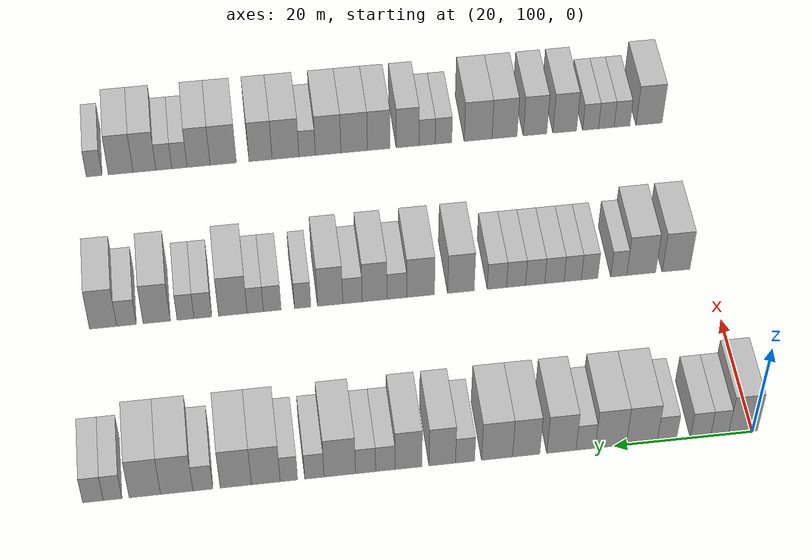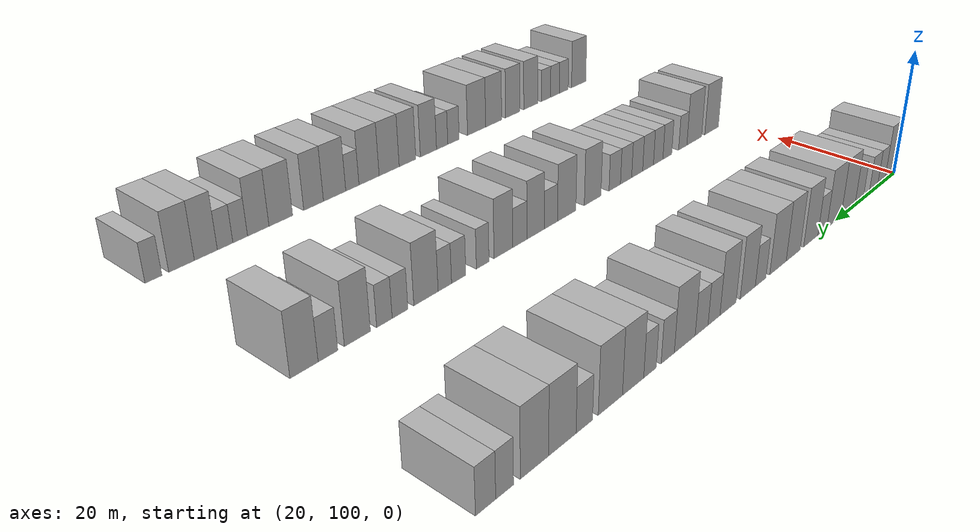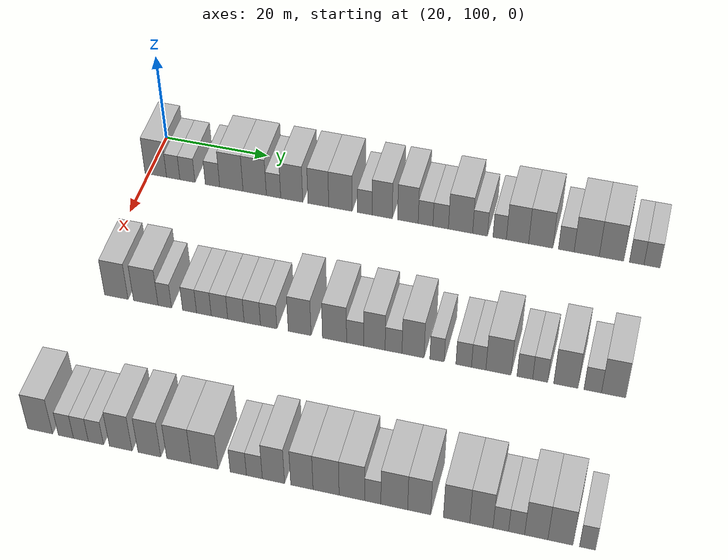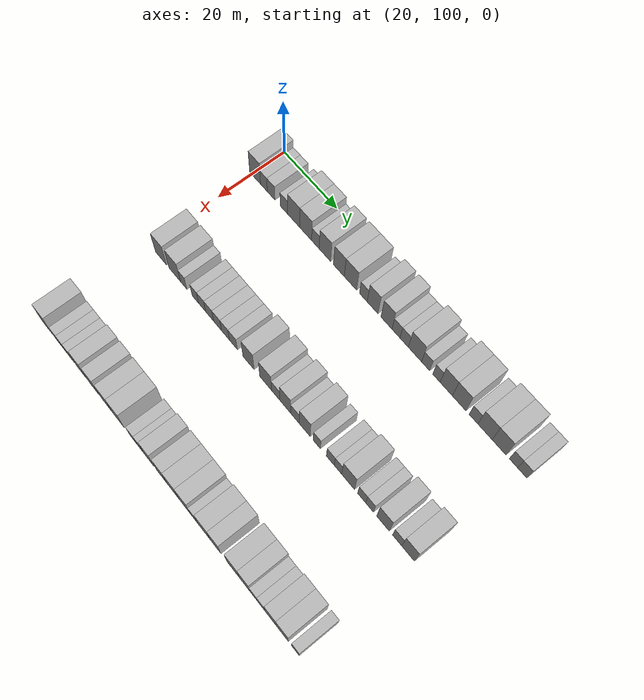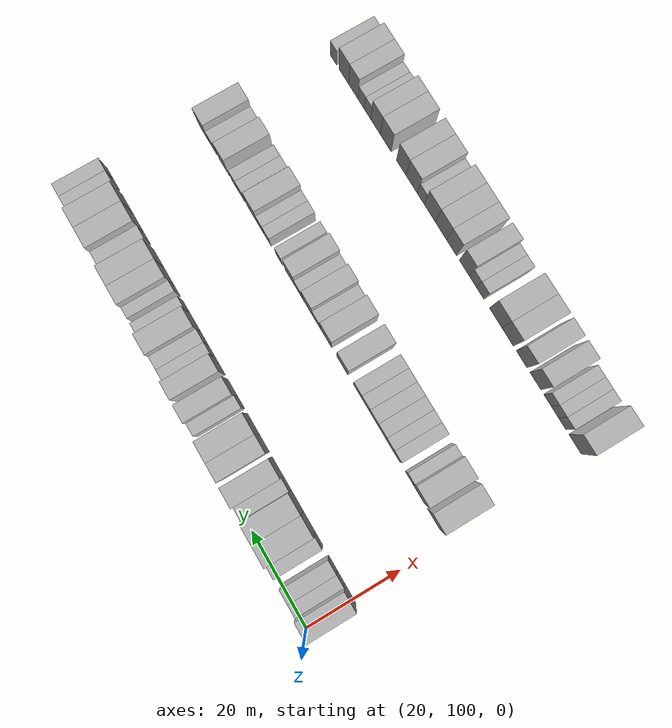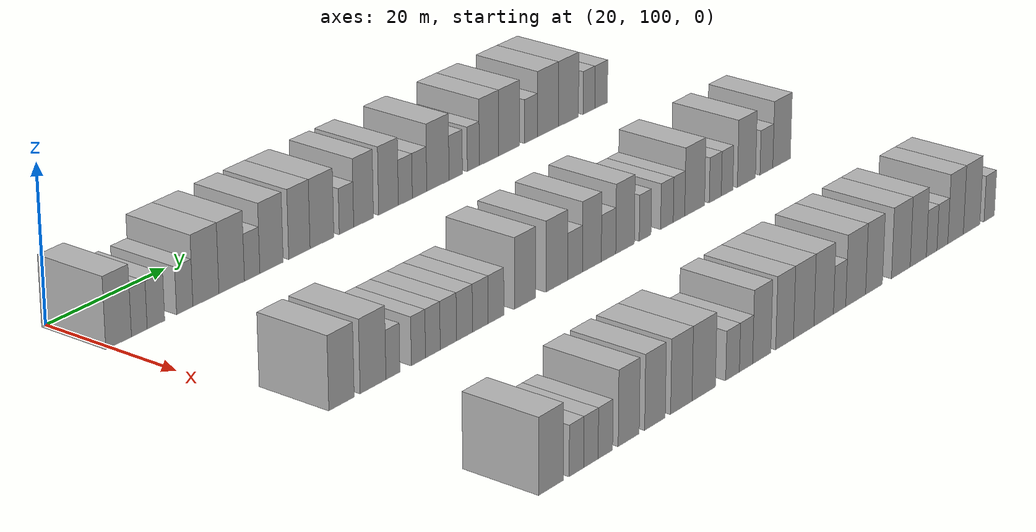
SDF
<sdf version="1.6">
 <world name="default">
  <model name="building_92">
   <static>1</static>
   <pose>25.0000 101.3994 0 0.000000 0.000000 0.000000</pose>
   <link name="link">
    <pose>0 0 4.50 0 0 0</pose>
    <collision name="collision"><geometry><box><size>10.0000 4.2042 9.0000</size></box></geometry></collision>
    <visual name="visual">
     <cast_shadows>0</cast_shadows>
     <geometry><box><size>10.0000 4.2042 9.0000</size></box></geometry>
     <material>
      <script>
       <uri>model://HANNAS_wall/materials/scripts</uri>
       <uri>model://HANNAS_wall/materials/textures</uri>
       <name>vrc/HANNAS_wall</name>
      </script>
     </material>
    </visual>
   </link>
  </model>
  <model name="building_93">
   <static>1</static>
   <pose>25.0000 104.8030 0 0.000000 0.000000 0.000000</pose>
   <link name="link">
    <pose>0 0 3.00 0 0 0</pose>
    <collision name="collision"><geometry><box><size>10.0000 2.6030 6.0000</size></box></geometry></collision>
    <visual name="visual">
     <cast_shadows>0</cast_shadows>
     <geometry><box><size>10.0000 2.6030 6.0000</size></box></geometry>
     <material>
      <script>
       <uri>model://HANNAS_wall/materials/scripts</uri>
       <uri>model://HANNAS_wall/materials/textures</uri>
       <name>vrc/HANNAS_wall</name>
      </script>
     </material>
    </visual>
   </link>
  </model>
  <model name="building_94">
   <static>1</static>
   <pose>25.0000 107.5714 0 0.000000 0.000000 0.000000</pose>
   <link name="link">
    <pose>0 0 3.00 0 0 0</pose>
    <collision name="collision"><geometry><box><size>10.0000 2.9339 6.0000</size></box></geometry></collision>
    <visual name="visual">
     <cast_shadows>0</cast_shadows>
     <geometry><box><size>10.0000 2.9339 6.0000</size></box></geometry>
     <material>
      <script>
       <uri>model://HANNAS_wall/materials/scripts</uri>
       <uri>model://HANNAS_wall/materials/textures</uri>
       <name>vrc/HANNAS_wall</name>
      </script>
     </material>
    </visual>
   </link>
  </model>
  <model name="building_95">
   <static>1</static>
   <pose>25.0000 112.4303 0 0.000000 0.000000 0.000000</pose>
   <link name="link">
    <pose>0 0 3.00 0 0 0</pose>
    <collision name="collision"><geometry><box><size>10.0000 2.7839 6.0000</size></box></geometry></collision>
    <visual name="visual">
     <cast_shadows>0</cast_shadows>
     <geometry><box><size>10.0000 2.7839 6.0000</size></box></geometry>
     <material>
      <script>
       <uri>model://HANNAS_wall/materials/scripts</uri>
       <uri>model://HANNAS_wall/materials/textures</uri>
       <name>vrc/HANNAS_wall</name>
      </script>
     </material>
    </visual>
   </link>
  </model>
  <model name="building_96">
   <static>1</static>
   <pose>25.0000 116.0674 0 0.000000 0.000000 0.000000</pose>
   <link name="link">
    <pose>0 0 4.50 0 0 0</pose>
    <collision name="collision"><geometry><box><size>10.0000 4.4903 9.0000</size></box></geometry></collision>
    <visual name="visual">
     <cast_shadows>0</cast_shadows>
     <geometry><box><size>10.0000 4.4903 9.0000</size></box></geometry>
     <material>
      <script>
       <uri>model://HANNAS_wall/materials/scripts</uri>
       <uri>model://HANNAS_wall/materials/textures</uri>
       <name>vrc/HANNAS_wall</name>
      </script>
     </material>
    </visual>
   </link>
  </model>
  <model name="building_97">
   <static>1</static>
   <pose>25.0000 120.5453 0 0.000000 0.000000 0.000000</pose>
   <link name="link">
    <pose>0 0 4.50 0 0 0</pose>
    <collision name="collision"><geometry><box><size>10.0000 4.4655 9.0000</size></box></geometry></collision>
    <visual name="visual">
     <cast_shadows>0</cast_shadows>
     <geometry><box><size>10.0000 4.4655 9.0000</size></box></geometry>
     <material>
      <script>
       <uri>model://HANNAS_wall/materials/scripts</uri>
       <uri>model://HANNAS_wall/materials/textures</uri>
       <name>vrc/HANNAS_wall</name>
      </script>
     </material>
    </visual>
   </link>
  </model>
  <model name="building_98">
   <static>1</static>
   <pose>25.0000 124.1472 0 0.000000 0.000000 0.000000</pose>
   <link name="link">
    <pose>0 0 3.00 0 0 0</pose>
    <collision name="collision"><geometry><box><size>10.0000 2.7383 6.0000</size></box></geometry></collision>
    <visual name="visual">
     <cast_shadows>0</cast_shadows>
     <geometry><box><size>10.0000 2.7383 6.0000</size></box></geometry>
     <material>
      <script>
       <uri>model://HANNAS_wall/materials/scripts</uri>
       <uri>model://HANNAS_wall/materials/textures</uri>
       <name>vrc/HANNAS_wall</name>
      </script>
     </material>
    </visual>
   </link>
  </model>
  <model name="building_99">
   <static>1</static>
   <pose>25.0000 127.6087 0 0.000000 0.000000 0.000000</pose>
   <link name="link">
    <pose>0 0 4.50 0 0 0</pose>
    <collision name="collision"><geometry><box><size>10.0000 4.1847 9.0000</size></box></geometry></collision>
    <visual name="visual">
     <cast_shadows>0</cast_shadows>
     <geometry><box><size>10.0000 4.1847 9.0000</size></box></geometry>
     <material>
      <script>
       <uri>model://HANNAS_wall/materials/scripts</uri>
       <uri>model://HANNAS_wall/materials/textures</uri>
       <name>vrc/HANNAS_wall</name>
      </script>
     </material>
    </visual>
   </link>
  </model>
  <model name="building_100">
   <static>1</static>
   <pose>25.0000 132.6512 0 0.000000 0.000000 0.000000</pose>
   <link name="link">
    <pose>0 0 4.50 0 0 0</pose>
    <collision name="collision"><geometry><box><size>10.0000 3.9002 9.0000</size></box></geometry></collision>
    <visual name="visual">
     <cast_shadows>0</cast_shadows>
     <geometry><box><size>10.0000 3.9002 9.0000</size></box></geometry>
     <material>
      <script>
       <uri>model://HANNAS_wall/materials/scripts</uri>
       <uri>model://HANNAS_wall/materials/textures</uri>
       <name>vrc/HANNAS_wall</name>
      </script>
     </material>
    </visual>
   </link>
  </model>
  <model name="building_101">
   <static>1</static>
   <pose>25.0000 136.8071 0 0.000000 0.000000 0.000000</pose>
   <link name="link">
    <pose>0 0 4.50 0 0 0</pose>
    <collision name="collision"><geometry><box><size>10.0000 4.4117 9.0000</size></box></geometry></collision>
    <visual name="visual">
     <cast_shadows>0</cast_shadows>
     <geometry><box><size>10.0000 4.4117 9.0000</size></box></geometry>
     <material>
      <script>
       <uri>model://HANNAS_wall/materials/scripts</uri>
       <uri>model://HANNAS_wall/materials/textures</uri>
       <name>vrc/HANNAS_wall</name>
      </script>
     </material>
    </visual>
   </link>
  </model>
  <model name="building_102">
   <static>1</static>
   <pose>25.0000 141.3751 0 0.000000 0.000000 0.000000</pose>
   <link name="link">
    <pose>0 0 3.00 0 0 0</pose>
    <collision name="collision"><geometry><box><size>10.0000 2.7243 6.0000</size></box></geometry></collision>
    <visual name="visual">
     <cast_shadows>0</cast_shadows>
     <geometry><box><size>10.0000 2.7243 6.0000</size></box></geometry>
     <material>
      <script>
       <uri>model://HANNAS_wall/materials/scripts</uri>
       <uri>model://HANNAS_wall/materials/textures</uri>
       <name>vrc/HANNAS_wall</name>
      </script>
     </material>
    </visual>
   </link>
  </model>
  <model name="building_103">
   <static>1</static>
   <pose>25.0000 144.6150 0 0.000000 0.000000 0.000000</pose>
   <link name="link">
    <pose>0 0 4.50 0 0 0</pose>
    <collision name="collision"><geometry><box><size>10.0000 3.7555 9.0000</size></box></geometry></collision>
    <visual name="visual">
     <cast_shadows>0</cast_shadows>
     <geometry><box><size>10.0000 3.7555 9.0000</size></box></geometry>
     <material>
      <script>
       <uri>model://HANNAS_wall/materials/scripts</uri>
       <uri>model://HANNAS_wall/materials/textures</uri>
       <name>vrc/HANNAS_wall</name>
      </script>
     </material>
    </visual>
   </link>
  </model>
  <model name="building_104">
   <static>1</static>
   <pose>25.0000 149.3965 0 0.000000 0.000000 0.000000</pose>
   <link name="link">
    <pose>0 0 4.50 0 0 0</pose>
    <collision name="collision"><geometry><box><size>10.0000 3.8076 9.0000</size></box></geometry></collision>
    <visual name="visual">
     <cast_shadows>0</cast_shadows>
     <geometry><box><size>10.0000 3.8076 9.0000</size></box></geometry>
     <material>
      <script>
       <uri>model://HANNAS_wall/materials/scripts</uri>
       <uri>model://HANNAS_wall/materials/textures</uri>
       <name>vrc/HANNAS_wall</name>
      </script>
     </material>
    </visual>
   </link>
  </model>
  <model name="building_105">
   <static>1</static>
   <pose>25.0000 152.6643 0 0.000000 0.000000 0.000000</pose>
   <link name="link">
    <pose>0 0 3.00 0 0 0</pose>
    <collision name="collision"><geometry><box><size>10.0000 2.7279 6.0000</size></box></geometry></collision>
    <visual name="visual">
     <cast_shadows>0</cast_shadows>
     <geometry><box><size>10.0000 2.7279 6.0000</size></box></geometry>
     <material>
      <script>
       <uri>model://HANNAS_wall/materials/scripts</uri>
       <uri>model://HANNAS_wall/materials/textures</uri>
       <name>vrc/HANNAS_wall</name>
      </script>
     </material>
    </visual>
   </link>
  </model>
  <model name="building_106">
   <static>1</static>
   <pose>25.0000 155.4519 0 0.000000 0.000000 0.000000</pose>
   <link name="link">
    <pose>0 0 3.00 0 0 0</pose>
    <collision name="collision"><geometry><box><size>10.0000 2.8474 6.0000</size></box></geometry></collision>
    <visual name="visual">
     <cast_shadows>0</cast_shadows>
     <geometry><box><size>10.0000 2.8474 6.0000</size></box></geometry>
     <material>
      <script>
       <uri>model://HANNAS_wall/materials/scripts</uri>
       <uri>model://HANNAS_wall/materials/textures</uri>
       <name>vrc/HANNAS_wall</name>
      </script>
     </material>
    </visual>
   </link>
  </model>
  <model name="building_107">
   <static>1</static>
   <pose>25.0000 159.0963 0 0.000000 0.000000 0.000000</pose>
   <link name="link">
    <pose>0 0 4.50 0 0 0</pose>
    <collision name="collision"><geometry><box><size>10.0000 4.4415 9.0000</size></box></geometry></collision>
    <visual name="visual">
     <cast_shadows>0</cast_shadows>
     <geometry><box><size>10.0000 4.4415 9.0000</size></box></geometry>
     <material>
      <script>
       <uri>model://HANNAS_wall/materials/scripts</uri>
       <uri>model://HANNAS_wall/materials/textures</uri>
       <name>vrc/HANNAS_wall</name>
      </script>
     </material>
    </visual>
   </link>
  </model>
  <model name="building_108">
   <static>1</static>
   <pose>25.0000 162.6706 0 0.000000 0.000000 0.000000</pose>
   <link name="link">
    <pose>0 0 3.00 0 0 0</pose>
    <collision name="collision"><geometry><box><size>10.0000 2.7070 6.0000</size></box></geometry></collision>
    <visual name="visual">
     <cast_shadows>0</cast_shadows>
     <geometry><box><size>10.0000 2.7070 6.0000</size></box></geometry>
     <material>
      <script>
       <uri>model://HANNAS_wall/materials/scripts</uri>
       <uri>model://HANNAS_wall/materials/textures</uri>
       <name>vrc/HANNAS_wall</name>
      </script>
     </material>
    </visual>
   </link>
  </model>
  <model name="building_109">
   <static>1</static>
   <pose>25.0000 166.2439 0 0.000000 0.000000 0.000000</pose>
   <link name="link">
    <pose>0 0 3.00 0 0 0</pose>
    <collision name="collision"><geometry><box><size>10.0000 2.4397 6.0000</size></box></geometry></collision>
    <visual name="visual">
     <cast_shadows>0</cast_shadows>
     <geometry><box><size>10.0000 2.4397 6.0000</size></box></geometry>
     <material>
      <script>
       <uri>model://HANNAS_wall/materials/scripts</uri>
       <uri>model://HANNAS_wall/materials/textures</uri>
       <name>vrc/HANNAS_wall</name>
      </script>
     </material>
    </visual>
   </link>
  </model>
  <model name="building_110">
   <static>1</static>
   <pose>25.0000 169.4790 0 0.000000 0.000000 0.000000</pose>
   <link name="link">
    <pose>0 0 4.50 0 0 0</pose>
    <collision name="collision"><geometry><box><size>10.0000 4.0306 9.0000</size></box></geometry></collision>
    <visual name="visual">
     <cast_shadows>0</cast_shadows>
     <geometry><box><size>10.0000 4.0306 9.0000</size></box></geometry>
     <material>
      <script>
       <uri>model://HANNAS_wall/materials/scripts</uri>
       <uri>model://HANNAS_wall/materials/textures</uri>
       <name>vrc/HANNAS_wall</name>
      </script>
     </material>
    </visual>
   </link>
  </model>
  <model name="building_111">
   <static>1</static>
   <pose>25.0000 173.6791 0 0.000000 0.000000 0.000000</pose>
   <link name="link">
    <pose>0 0 4.50 0 0 0</pose>
    <collision name="collision"><geometry><box><size>10.0000 4.3695 9.0000</size></box></geometry></collision>
    <visual name="visual">
     <cast_shadows>0</cast_shadows>
     <geometry><box><size>10.0000 4.3695 9.0000</size></box></geometry>
     <material>
      <script>
       <uri>model://HANNAS_wall/materials/scripts</uri>
       <uri>model://HANNAS_wall/materials/textures</uri>
       <name>vrc/HANNAS_wall</name>
      </script>
     </material>
    </visual>
   </link>
  </model>
  <model name="building_112">
   <static>1</static>
   <pose>25.0000 178.2667 0 0.000000 0.000000 0.000000</pose>
   <link name="link">
    <pose>0 0 3.00 0 0 0</pose>
    <collision name="collision"><geometry><box><size>10.0000 2.8055 6.0000</size></box></geometry></collision>
    <visual name="visual">
     <cast_shadows>0</cast_shadows>
     <geometry><box><size>10.0000 2.8055 6.0000</size></box></geometry>
     <material>
      <script>
       <uri>model://HANNAS_wall/materials/scripts</uri>
       <uri>model://HANNAS_wall/materials/textures</uri>
       <name>vrc/HANNAS_wall</name>
      </script>
     </material>
    </visual>
   </link>
  </model>
  <model name="building_113">
   <static>1</static>
   <pose>25.0000 181.9166 0 0.000000 0.000000 0.000000</pose>
   <link name="link">
    <pose>0 0 4.50 0 0 0</pose>
    <collision name="collision"><geometry><box><size>10.0000 4.4944 9.0000</size></box></geometry></collision>
    <visual name="visual">
     <cast_shadows>0</cast_shadows>
     <geometry><box><size>10.0000 4.4944 9.0000</size></box></geometry>
     <material>
      <script>
       <uri>model://HANNAS_wall/materials/scripts</uri>
       <uri>model://HANNAS_wall/materials/textures</uri>
       <name>vrc/HANNAS_wall</name>
      </script>
     </material>
    </visual>
   </link>
  </model>
  <model name="building_114">
   <static>1</static>
   <pose>25.0000 186.3397 0 0.000000 0.000000 0.000000</pose>
   <link name="link">
    <pose>0 0 4.50 0 0 0</pose>
    <collision name="collision"><geometry><box><size>10.0000 4.3518 9.0000</size></box></geometry></collision>
    <visual name="visual">
     <cast_shadows>0</cast_shadows>
     <geometry><box><size>10.0000 4.3518 9.0000</size></box></geometry>
     <material>
      <script>
       <uri>model://HANNAS_wall/materials/scripts</uri>
       <uri>model://HANNAS_wall/materials/textures</uri>
       <name>vrc/HANNAS_wall</name>
      </script>
     </material>
    </visual>
   </link>
  </model>
  <model name="building_115">
   <static>1</static>
   <pose>25.0000 190.8106 0 0.000000 0.000000 0.000000</pose>
   <link name="link">
    <pose>0 0 3.00 0 0 0</pose>
    <collision name="collision"><geometry><box><size>10.0000 2.5899 6.0000</size></box></geometry></collision>
    <visual name="visual">
     <cast_shadows>0</cast_shadows>
     <geometry><box><size>10.0000 2.5899 6.0000</size></box></geometry>
     <material>
      <script>
       <uri>model://HANNAS_wall/materials/scripts</uri>
       <uri>model://HANNAS_wall/materials/textures</uri>
       <name>vrc/HANNAS_wall</name>
      </script>
     </material>
    </visual>
   </link>
  </model>
  <model name="building_116">
   <static>1</static>
   <pose>25.0000 193.5250 0 0.000000 0.000000 0.000000</pose>
   <link name="link">
    <pose>0 0 3.00 0 0 0</pose>
    <collision name="collision"><geometry><box><size>10.0000 2.8390 6.0000</size></box></geometry></collision>
    <visual name="visual">
     <cast_shadows>0</cast_shadows>
     <geometry><box><size>10.0000 2.8390 6.0000</size></box></geometry>
     <material>
      <script>
       <uri>model://HANNAS_wall/materials/scripts</uri>
       <uri>model://HANNAS_wall/materials/textures</uri>
       <name>vrc/HANNAS_wall</name>
      </script>
     </material>
    </visual>
   </link>
  </model>
  <model name="building_240">
   <static>1</static>
   <pose>55.0000 104.6842 0 0.000000 0.000000 0.000000</pose>
   <link name="link">
    <pose>0 0 4.50 0 0 0</pose>
    <collision name="collision"><geometry><box><size>10.0000 4.2841 9.0000</size></box></geometry></collision>
    <visual name="visual">
     <cast_shadows>0</cast_shadows>
     <geometry><box><size>10.0000 4.2841 9.0000</size></box></geometry>
     <material>
      <script>
       <uri>model://HANNAS_wall/materials/scripts</uri>
       <uri>model://HANNAS_wall/materials/textures</uri>
       <name>vrc/HANNAS_wall</name>
      </script>
     </material>
    </visual>
   </link>
  </model>
  <model name="building_241">
   <static>1</static>
   <pose>55.0000 110.0590 0 0.000000 0.000000 0.000000</pose>
   <link name="link">
    <pose>0 0 4.50 0 0 0</pose>
    <collision name="collision"><geometry><box><size>10.0000 4.4657 9.0000</size></box></geometry></collision>
    <visual name="visual">
     <cast_shadows>0</cast_shadows>
     <geometry><box><size>10.0000 4.4657 9.0000</size></box></geometry>
     <material>
      <script>
       <uri>model://HANNAS_wall/materials/scripts</uri>
       <uri>model://HANNAS_wall/materials/textures</uri>
       <name>vrc/HANNAS_wall</name>
      </script>
     </material>
    </visual>
   </link>
  </model>
  <model name="building_242">
   <static>1</static>
   <pose>55.0000 113.5144 0 0.000000 0.000000 0.000000</pose>
   <link name="link">
    <pose>0 0 3.00 0 0 0</pose>
    <collision name="collision"><geometry><box><size>10.0000 2.4450 6.0000</size></box></geometry></collision>
    <visual name="visual">
     <cast_shadows>0</cast_shadows>
     <geometry><box><size>10.0000 2.4450 6.0000</size></box></geometry>
     <material>
      <script>
       <uri>model://HANNAS_wall/materials/scripts</uri>
       <uri>model://HANNAS_wall/materials/textures</uri>
       <name>vrc/HANNAS_wall</name>
      </script>
     </material>
    </visual>
   </link>
  </model>
  <model name="building_243">
   <static>1</static>
   <pose>55.0000 117.9965 0 0.000000 0.000000 0.000000</pose>
   <link name="link">
    <pose>0 0 3.00 0 0 0</pose>
    <collision name="collision"><geometry><box><size>10.0000 2.5193 6.0000</size></box></geometry></collision>
    <visual name="visual">
     <cast_shadows>0</cast_shadows>
     <geometry><box><size>10.0000 2.5193 6.0000</size></box></geometry>
     <material>
      <script>
       <uri>model://HANNAS_wall/materials/scripts</uri>
       <uri>model://HANNAS_wall/materials/textures</uri>
       <name>vrc/HANNAS_wall</name>
      </script>
     </material>
    </visual>
   </link>
  </model>
  <model name="building_244">
   <static>1</static>
   <pose>55.0000 120.5782 0 0.000000 0.000000 0.000000</pose>
   <link name="link">
    <pose>0 0 3.00 0 0 0</pose>
    <collision name="collision"><geometry><box><size>10.0000 2.6441 6.0000</size></box></geometry></collision>
    <visual name="visual">
     <cast_shadows>0</cast_shadows>
     <geometry><box><size>10.0000 2.6441 6.0000</size></box></geometry>
     <material>
      <script>
       <uri>model://HANNAS_wall/materials/scripts</uri>
       <uri>model://HANNAS_wall/materials/textures</uri>
       <name>vrc/HANNAS_wall</name>
      </script>
     </material>
    </visual>
   </link>
  </model>
  <model name="building_245">
   <static>1</static>
   <pose>55.0000 123.3737 0 0.000000 0.000000 0.000000</pose>
   <link name="link">
    <pose>0 0 3.00 0 0 0</pose>
    <collision name="collision"><geometry><box><size>10.0000 2.9469 6.0000</size></box></geometry></collision>
    <visual name="visual">
     <cast_shadows>0</cast_shadows>
     <geometry><box><size>10.0000 2.9469 6.0000</size></box></geometry>
     <material>
      <script>
       <uri>model://HANNAS_wall/materials/scripts</uri>
       <uri>model://HANNAS_wall/materials/textures</uri>
       <name>vrc/HANNAS_wall</name>
      </script>
     </material>
    </visual>
   </link>
  </model>
  <model name="building_246">
   <static>1</static>
   <pose>55.0000 126.3096 0 0.000000 0.000000 0.000000</pose>
   <link name="link">
    <pose>0 0 3.00 0 0 0</pose>
    <collision name="collision"><geometry><box><size>10.0000 2.9248 6.0000</size></box></geometry></collision>
    <visual name="visual">
     <cast_shadows>0</cast_shadows>
     <geometry><box><size>10.0000 2.9248 6.0000</size></box></geometry>
     <material>
      <script>
       <uri>model://HANNAS_wall/materials/scripts</uri>
       <uri>model://HANNAS_wall/materials/textures</uri>
       <name>vrc/HANNAS_wall</name>
      </script>
     </material>
    </visual>
   </link>
  </model>
  <model name="building_247">
   <static>1</static>
   <pose>55.0000 129.2288 0 0.000000 0.000000 0.000000</pose>
   <link name="link">
    <pose>0 0 3.00 0 0 0</pose>
    <collision name="collision"><geometry><box><size>10.0000 2.9137 6.0000</size></box></geometry></collision>
    <visual name="visual">
     <cast_shadows>0</cast_shadows>
     <geometry><box><size>10.0000 2.9137 6.0000</size></box></geometry>
     <material>
      <script>
       <uri>model://HANNAS_wall/materials/scripts</uri>
       <uri>model://HANNAS_wall/materials/textures</uri>
       <name>vrc/HANNAS_wall</name>
      </script>
     </material>
    </visual>
   </link>
  </model>
  <model name="building_248">
   <static>1</static>
   <pose>55.0000 132.1472 0 0.000000 0.000000 0.000000</pose>
   <link name="link">
    <pose>0 0 3.00 0 0 0</pose>
    <collision name="collision"><geometry><box><size>10.0000 2.9232 6.0000</size></box></geometry></collision>
    <visual name="visual">
     <cast_shadows>0</cast_shadows>
     <geometry><box><size>10.0000 2.9232 6.0000</size></box></geometry>
     <material>
      <script>
       <uri>model://HANNAS_wall/materials/scripts</uri>
       <uri>model://HANNAS_wall/materials/textures</uri>
       <name>vrc/HANNAS_wall</name>
      </script>
     </material>
    </visual>
   </link>
  </model>
  <model name="building_249">
   <static>1</static>
   <pose>55.0000 137.6207 0 0.000000 0.000000 0.000000</pose>
   <link name="link">
    <pose>0 0 4.50 0 0 0</pose>
    <collision name="collision"><geometry><box><size>10.0000 4.0237 9.0000</size></box></geometry></collision>
    <visual name="visual">
     <cast_shadows>0</cast_shadows>
     <geometry><box><size>10.0000 4.0237 9.0000</size></box></geometry>
     <material>
      <script>
       <uri>model://HANNAS_wall/materials/scripts</uri>
       <uri>model://HANNAS_wall/materials/textures</uri>
       <name>vrc/HANNAS_wall</name>
      </script>
     </material>
    </visual>
   </link>
  </model>
  <model name="building_250">
   <static>1</static>
   <pose>55.0000 143.7388 0 0.000000 0.000000 0.000000</pose>
   <link name="link">
    <pose>0 0 4.50 0 0 0</pose>
    <collision name="collision"><geometry><box><size>10.0000 4.2125 9.0000</size></box></geometry></collision>
    <visual name="visual">
     <cast_shadows>0</cast_shadows>
     <geometry><box><size>10.0000 4.2125 9.0000</size></box></geometry>
     <material>
      <script>
       <uri>model://HANNAS_wall/materials/scripts</uri>
       <uri>model://HANNAS_wall/materials/textures</uri>
       <name>vrc/HANNAS_wall</name>
      </script>
     </material>
    </visual>
   </link>
  </model>
  <model name="building_251">
   <static>1</static>
   <pose>55.0000 147.3148 0 0.000000 0.000000 0.000000</pose>
   <link name="link">
    <pose>0 0 3.00 0 0 0</pose>
    <collision name="collision"><geometry><box><size>10.0000 2.9395 6.0000</size></box></geometry></collision>
    <visual name="visual">
     <cast_shadows>0</cast_shadows>
     <geometry><box><size>10.0000 2.9395 6.0000</size></box></geometry>
     <material>
      <script>
       <uri>model://HANNAS_wall/materials/scripts</uri>
       <uri>model://HANNAS_wall/materials/textures</uri>
       <name>vrc/HANNAS_wall</name>
      </script>
     </material>
    </visual>
   </link>
  </model>
  <model name="building_252">
   <static>1</static>
   <pose>55.0000 150.6607 0 0.000000 0.000000 0.000000</pose>
   <link name="link">
    <pose>0 0 4.50 0 0 0</pose>
    <collision name="collision"><geometry><box><size>10.0000 3.7522 9.0000</size></box></geometry></collision>
    <visual name="visual">
     <cast_shadows>0</cast_shadows>
     <geometry><box><size>10.0000 3.7522 9.0000</size></box></geometry>
     <material>
      <script>
       <uri>model://HANNAS_wall/materials/scripts</uri>
       <uri>model://HANNAS_wall/materials/textures</uri>
       <name>vrc/HANNAS_wall</name>
      </script>
     </material>
    </visual>
   </link>
  </model>
  <model name="building_253">
   <static>1</static>
   <pose>55.0000 153.9927 0 0.000000 0.000000 0.000000</pose>
   <link name="link">
    <pose>0 0 3.00 0 0 0</pose>
    <collision name="collision"><geometry><box><size>10.0000 2.9120 6.0000</size></box></geometry></collision>
    <visual name="visual">
     <cast_shadows>0</cast_shadows>
     <geometry><box><size>10.0000 2.9120 6.0000</size></box></geometry>
     <material>
      <script>
       <uri>model://HANNAS_wall/materials/scripts</uri>
       <uri>model://HANNAS_wall/materials/textures</uri>
       <name>vrc/HANNAS_wall</name>
      </script>
     </material>
    </visual>
   </link>
  </model>
  <model name="building_254">
   <static>1</static>
   <pose>55.0000 157.3456 0 0.000000 0.000000 0.000000</pose>
   <link name="link">
    <pose>0 0 4.50 0 0 0</pose>
    <collision name="collision"><geometry><box><size>10.0000 3.7938 9.0000</size></box></geometry></collision>
    <visual name="visual">
     <cast_shadows>0</cast_shadows>
     <geometry><box><size>10.0000 3.7938 9.0000</size></box></geometry>
     <material>
      <script>
       <uri>model://HANNAS_wall/materials/scripts</uri>
       <uri>model://HANNAS_wall/materials/textures</uri>
       <name>vrc/HANNAS_wall</name>
      </script>
     </material>
    </visual>
   </link>
  </model>
  <model name="building_255">
   <static>1</static>
   <pose>55.0000 161.4676 0 0.000000 0.000000 0.000000</pose>
   <link name="link">
    <pose>0 0 3.00 0 0 0</pose>
    <collision name="collision"><geometry><box><size>10.0000 2.4502 6.0000</size></box></geometry></collision>
    <visual name="visual">
     <cast_shadows>0</cast_shadows>
     <geometry><box><size>10.0000 2.4502 6.0000</size></box></geometry>
     <material>
      <script>
       <uri>model://HANNAS_wall/materials/scripts</uri>
       <uri>model://HANNAS_wall/materials/textures</uri>
       <name>vrc/HANNAS_wall</name>
      </script>
     </material>
    </visual>
   </link>
  </model>
  <model name="building_256">
   <static>1</static>
   <pose>55.0000 166.0188 0 0.000000 0.000000 0.000000</pose>
   <link name="link">
    <pose>0 0 3.00 0 0 0</pose>
    <collision name="collision"><geometry><box><size>10.0000 2.6523 6.0000</size></box></geometry></collision>
    <visual name="visual">
     <cast_shadows>0</cast_shadows>
     <geometry><box><size>10.0000 2.6523 6.0000</size></box></geometry>
     <material>
      <script>
       <uri>model://HANNAS_wall/materials/scripts</uri>
       <uri>model://HANNAS_wall/materials/textures</uri>
       <name>vrc/HANNAS_wall</name>
      </script>
     </material>
    </visual>
   </link>
  </model>
  <model name="building_257">
   <static>1</static>
   <pose>55.0000 168.5630 0 0.000000 0.000000 0.000000</pose>
   <link name="link">
    <pose>0 0 3.00 0 0 0</pose>
    <collision name="collision"><geometry><box><size>10.0000 2.4360 6.0000</size></box></geometry></collision>
    <visual name="visual">
     <cast_shadows>0</cast_shadows>
     <geometry><box><size>10.0000 2.4360 6.0000</size></box></geometry>
     <material>
      <script>
       <uri>model://HANNAS_wall/materials/scripts</uri>
       <uri>model://HANNAS_wall/materials/textures</uri>
       <name>vrc/HANNAS_wall</name>
      </script>
     </material>
    </visual>
   </link>
  </model>
  <model name="building_258">
   <static>1</static>
   <pose>55.0000 171.9102 0 0.000000 0.000000 0.000000</pose>
   <link name="link">
    <pose>0 0 4.50 0 0 0</pose>
    <collision name="collision"><geometry><box><size>10.0000 4.2584 9.0000</size></box></geometry></collision>
    <visual name="visual">
     <cast_shadows>0</cast_shadows>
     <geometry><box><size>10.0000 4.2584 9.0000</size></box></geometry>
     <material>
      <script>
       <uri>model://HANNAS_wall/materials/scripts</uri>
       <uri>model://HANNAS_wall/materials/textures</uri>
       <name>vrc/HANNAS_wall</name>
      </script>
     </material>
    </visual>
   </link>
  </model>
  <model name="building_259">
   <static>1</static>
   <pose>55.0000 176.3549 0 0.000000 0.000000 0.000000</pose>
   <link name="link">
    <pose>0 0 3.00 0 0 0</pose>
    <collision name="collision"><geometry><box><size>10.0000 2.6309 6.0000</size></box></geometry></collision>
    <visual name="visual">
     <cast_shadows>0</cast_shadows>
     <geometry><box><size>10.0000 2.6309 6.0000</size></box></geometry>
     <material>
      <script>
       <uri>model://HANNAS_wall/materials/scripts</uri>
       <uri>model://HANNAS_wall/materials/textures</uri>
       <name>vrc/HANNAS_wall</name>
      </script>
     </material>
    </visual>
   </link>
  </model>
  <model name="building_260">
   <static>1</static>
   <pose>55.0000 178.9336 0 0.000000 0.000000 0.000000</pose>
   <link name="link">
    <pose>0 0 3.00 0 0 0</pose>
    <collision name="collision"><geometry><box><size>10.0000 2.5266 6.0000</size></box></geometry></collision>
    <visual name="visual">
     <cast_shadows>0</cast_shadows>
     <geometry><box><size>10.0000 2.5266 6.0000</size></box></geometry>
     <material>
      <script>
       <uri>model://HANNAS_wall/materials/scripts</uri>
       <uri>model://HANNAS_wall/materials/textures</uri>
       <name>vrc/HANNAS_wall</name>
      </script>
     </material>
    </visual>
   </link>
  </model>
  <model name="building_261">
   <static>1</static>
   <pose>55.0000 183.2182 0 0.000000 0.000000 0.000000</pose>
   <link name="link">
    <pose>0 0 4.50 0 0 0</pose>
    <collision name="collision"><geometry><box><size>10.0000 4.0424 9.0000</size></box></geometry></collision>
    <visual name="visual">
     <cast_shadows>0</cast_shadows>
     <geometry><box><size>10.0000 4.0424 9.0000</size></box></geometry>
     <material>
      <script>
       <uri>model://HANNAS_wall/materials/scripts</uri>
       <uri>model://HANNAS_wall/materials/textures</uri>
       <name>vrc/HANNAS_wall</name>
      </script>
     </material>
    </visual>
   </link>
  </model>
  <model name="building_262">
   <static>1</static>
   <pose>55.0000 187.6887 0 0.000000 0.000000 0.000000</pose>
   <link name="link">
    <pose>0 0 3.00 0 0 0</pose>
    <collision name="collision"><geometry><box><size>10.0000 2.8986 6.0000</size></box></geometry></collision>
    <visual name="visual">
     <cast_shadows>0</cast_shadows>
     <geometry><box><size>10.0000 2.8986 6.0000</size></box></geometry>
     <material>
      <script>
       <uri>model://HANNAS_wall/materials/scripts</uri>
       <uri>model://HANNAS_wall/materials/textures</uri>
       <name>vrc/HANNAS_wall</name>
      </script>
     </material>
    </visual>
   </link>
  </model>
  <model name="building_263">
   <static>1</static>
   <pose>55.0000 191.1465 0 0.000000 0.000000 0.000000</pose>
   <link name="link">
    <pose>0 0 4.50 0 0 0</pose>
    <collision name="collision"><geometry><box><size>10.0000 4.0170 9.0000</size></box></geometry></collision>
    <visual name="visual">
     <cast_shadows>0</cast_shadows>
     <geometry><box><size>10.0000 4.0170 9.0000</size></box></geometry>
     <material>
      <script>
       <uri>model://HANNAS_wall/materials/scripts</uri>
       <uri>model://HANNAS_wall/materials/textures</uri>
       <name>vrc/HANNAS_wall</name>
      </script>
     </material>
    </visual>
   </link>
  </model>
  <model name="building_388">
   <static>1</static>
   <pose>85.0000 102.6946 0 0.000000 0.000000 0.000000</pose>
   <link name="link">
    <pose>0 0 4.50 0 0 0</pose>
    <collision name="collision"><geometry><box><size>10.0000 4.2722 9.0000</size></box></geometry></collision>
    <visual name="visual">
     <cast_shadows>0</cast_shadows>
     <geometry><box><size>10.0000 4.2722 9.0000</size></box></geometry>
     <material>
      <script>
       <uri>model://HANNAS_wall/materials/scripts</uri>
       <uri>model://HANNAS_wall/materials/textures</uri>
       <name>vrc/HANNAS_wall</name>
      </script>
     </material>
    </visual>
   </link>
  </model>
  <model name="building_389">
   <static>1</static>
   <pose>85.0000 107.1198 0 0.000000 0.000000 0.000000</pose>
   <link name="link">
    <pose>0 0 3.00 0 0 0</pose>
    <collision name="collision"><geometry><box><size>10.0000 2.5783 6.0000</size></box></geometry></collision>
    <visual name="visual">
     <cast_shadows>0</cast_shadows>
     <geometry><box><size>10.0000 2.5783 6.0000</size></box></geometry>
     <material>
      <script>
       <uri>model://HANNAS_wall/materials/scripts</uri>
       <uri>model://HANNAS_wall/materials/textures</uri>
       <name>vrc/HANNAS_wall</name>
      </script>
     </material>
    </visual>
   </link>
  </model>
  <model name="building_390">
   <static>1</static>
   <pose>85.0000 109.6787 0 0.000000 0.000000 0.000000</pose>
   <link name="link">
    <pose>0 0 3.00 0 0 0</pose>
    <collision name="collision"><geometry><box><size>10.0000 2.5395 6.0000</size></box></geometry></collision>
    <visual name="visual">
     <cast_shadows>0</cast_shadows>
     <geometry><box><size>10.0000 2.5395 6.0000</size></box></geometry>
     <material>
      <script>
       <uri>model://HANNAS_wall/materials/scripts</uri>
       <uri>model://HANNAS_wall/materials/textures</uri>
       <name>vrc/HANNAS_wall</name>
      </script>
     </material>
    </visual>
   </link>
  </model>
  <model name="building_391">
   <static>1</static>
   <pose>85.0000 112.2411 0 0.000000 0.000000 0.000000</pose>
   <link name="link">
    <pose>0 0 3.00 0 0 0</pose>
    <collision name="collision"><geometry><box><size>10.0000 2.5854 6.0000</size></box></geometry></collision>
    <visual name="visual">
     <cast_shadows>0</cast_shadows>
     <geometry><box><size>10.0000 2.5854 6.0000</size></box></geometry>
     <material>
      <script>
       <uri>model://HANNAS_wall/materials/scripts</uri>
       <uri>model://HANNAS_wall/materials/textures</uri>
       <name>vrc/HANNAS_wall</name>
      </script>
     </material>
    </visual>
   </link>
  </model>
  <model name="building_392">
   <static>1</static>
   <pose>85.0000 116.4515 0 0.000000 0.000000 0.000000</pose>
   <link name="link">
    <pose>0 0 4.50 0 0 0</pose>
    <collision name="collision"><geometry><box><size>10.0000 3.8353 9.0000</size></box></geometry></collision>
    <visual name="visual">
     <cast_shadows>0</cast_shadows>
     <geometry><box><size>10.0000 3.8353 9.0000</size></box></geometry>
     <material>
      <script>
       <uri>model://HANNAS_wall/materials/scripts</uri>
       <uri>model://HANNAS_wall/materials/textures</uri>
       <name>vrc/HANNAS_wall</name>
      </script>
     </material>
    </visual>
   </link>
  </model>
  <model name="building_393">
   <static>1</static>
   <pose>85.0000 121.2791 0 0.000000 0.000000 0.000000</pose>
   <link name="link">
    <pose>0 0 4.50 0 0 0</pose>
    <collision name="collision"><geometry><box><size>10.0000 3.8200 9.0000</size></box></geometry></collision>
    <visual name="visual">
     <cast_shadows>0</cast_shadows>
     <geometry><box><size>10.0000 3.8200 9.0000</size></box></geometry>
     <material>
      <script>
       <uri>model://HANNAS_wall/materials/scripts</uri>
       <uri>model://HANNAS_wall/materials/textures</uri>
       <name>vrc/HANNAS_wall</name>
      </script>
     </material>
    </visual>
   </link>
  </model>
  <model name="building_394">
   <static>1</static>
   <pose>85.0000 126.2174 0 0.000000 0.000000 0.000000</pose>
   <link name="link">
    <pose>0 0 4.50 0 0 0</pose>
    <collision name="collision"><geometry><box><size>10.0000 4.0567 9.0000</size></box></geometry></collision>
    <visual name="visual">
     <cast_shadows>0</cast_shadows>
     <geometry><box><size>10.0000 4.0567 9.0000</size></box></geometry>
     <material>
      <script>
       <uri>model://HANNAS_wall/materials/scripts</uri>
       <uri>model://HANNAS_wall/materials/textures</uri>
       <name>vrc/HANNAS_wall</name>
      </script>
     </material>
    </visual>
   </link>
  </model>
  <model name="building_395">
   <static>1</static>
   <pose>85.0000 130.4911 0 0.000000 0.000000 0.000000</pose>
   <link name="link">
    <pose>0 0 4.50 0 0 0</pose>
    <collision name="collision"><geometry><box><size>10.0000 4.4906 9.0000</size></box></geometry></collision>
    <visual name="visual">
     <cast_shadows>0</cast_shadows>
     <geometry><box><size>10.0000 4.4906 9.0000</size></box></geometry>
     <material>
      <script>
       <uri>model://HANNAS_wall/materials/scripts</uri>
       <uri>model://HANNAS_wall/materials/textures</uri>
       <name>vrc/HANNAS_wall</name>
      </script>
     </material>
    </visual>
   </link>
  </model>
  <model name="building_396">
   <static>1</static>
   <pose>85.0000 136.0775 0 0.000000 0.000000 0.000000</pose>
   <link name="link">
    <pose>0 0 3.00 0 0 0</pose>
    <collision name="collision"><geometry><box><size>10.0000 2.6822 6.0000</size></box></geometry></collision>
    <visual name="visual">
     <cast_shadows>0</cast_shadows>
     <geometry><box><size>10.0000 2.6822 6.0000</size></box></geometry>
     <material>
      <script>
       <uri>model://HANNAS_wall/materials/scripts</uri>
       <uri>model://HANNAS_wall/materials/textures</uri>
       <name>vrc/HANNAS_wall</name>
      </script>
     </material>
    </visual>
   </link>
  </model>
  <model name="building_397">
   <static>1</static>
   <pose>85.0000 138.7253 0 0.000000 0.000000 0.000000</pose>
   <link name="link">
    <pose>0 0 3.00 0 0 0</pose>
    <collision name="collision"><geometry><box><size>10.0000 2.6134 6.0000</size></box></geometry></collision>
    <visual name="visual">
     <cast_shadows>0</cast_shadows>
     <geometry><box><size>10.0000 2.6134 6.0000</size></box></geometry>
     <material>
      <script>
       <uri>model://HANNAS_wall/materials/scripts</uri>
       <uri>model://HANNAS_wall/materials/textures</uri>
       <name>vrc/HANNAS_wall</name>
      </script>
     </material>
    </visual>
   </link>
  </model>
  <model name="building_398">
   <static>1</static>
   <pose>85.0000 141.8539 0 0.000000 0.000000 0.000000</pose>
   <link name="link">
    <pose>0 0 4.50 0 0 0</pose>
    <collision name="collision"><geometry><box><size>10.0000 3.6439 9.0000</size></box></geometry></collision>
    <visual name="visual">
     <cast_shadows>0</cast_shadows>
     <geometry><box><size>10.0000 3.6439 9.0000</size></box></geometry>
     <material>
      <script>
       <uri>model://HANNAS_wall/materials/scripts</uri>
       <uri>model://HANNAS_wall/materials/textures</uri>
       <name>vrc/HANNAS_wall</name>
      </script>
     </material>
    </visual>
   </link>
  </model>
  <model name="building_399">
   <static>1</static>
   <pose>85.0000 146.4878 0 0.000000 0.000000 0.000000</pose>
   <link name="link">
    <pose>0 0 4.50 0 0 0</pose>
    <collision name="collision"><geometry><box><size>10.0000 3.6239 9.0000</size></box></geometry></collision>
    <visual name="visual">
     <cast_shadows>0</cast_shadows>
     <geometry><box><size>10.0000 3.6239 9.0000</size></box></geometry>
     <material>
      <script>
       <uri>model://HANNAS_wall/materials/scripts</uri>
       <uri>model://HANNAS_wall/materials/textures</uri>
       <name>vrc/HANNAS_wall</name>
      </script>
     </material>
    </visual>
   </link>
  </model>
  <model name="building_400">
   <static>1</static>
   <pose>85.0000 150.4095 0 0.000000 0.000000 0.000000</pose>
   <link name="link">
    <pose>0 0 4.50 0 0 0</pose>
    <collision name="collision"><geometry><box><size>10.0000 4.2195 9.0000</size></box></geometry></collision>
    <visual name="visual">
     <cast_shadows>0</cast_shadows>
     <geometry><box><size>10.0000 4.2195 9.0000</size></box></geometry>
     <material>
      <script>
       <uri>model://HANNAS_wall/materials/scripts</uri>
       <uri>model://HANNAS_wall/materials/textures</uri>
       <name>vrc/HANNAS_wall</name>
      </script>
     </material>
    </visual>
   </link>
  </model>
  <model name="building_401">
   <static>1</static>
   <pose>85.0000 154.5666 0 0.000000 0.000000 0.000000</pose>
   <link name="link">
    <pose>0 0 4.50 0 0 0</pose>
    <collision name="collision"><geometry><box><size>10.0000 4.0947 9.0000</size></box></geometry></collision>
    <visual name="visual">
     <cast_shadows>0</cast_shadows>
     <geometry><box><size>10.0000 4.0947 9.0000</size></box></geometry>
     <material>
      <script>
       <uri>model://HANNAS_wall/materials/scripts</uri>
       <uri>model://HANNAS_wall/materials/textures</uri>
       <name>vrc/HANNAS_wall</name>
      </script>
     </material>
    </visual>
   </link>
  </model>
  <model name="building_402">
   <static>1</static>
   <pose>85.0000 157.9188 0 0.000000 0.000000 0.000000</pose>
   <link name="link">
    <pose>0 0 3.00 0 0 0</pose>
    <collision name="collision"><geometry><box><size>10.0000 2.6096 6.0000</size></box></geometry></collision>
    <visual name="visual">
     <cast_shadows>0</cast_shadows>
     <geometry><box><size>10.0000 2.6096 6.0000</size></box></geometry>
     <material>
      <script>
       <uri>model://HANNAS_wall/materials/scripts</uri>
       <uri>model://HANNAS_wall/materials/textures</uri>
       <name>vrc/HANNAS_wall</name>
      </script>
     </material>
    </visual>
   </link>
  </model>
  <model name="building_403">
   <static>1</static>
   <pose>85.0000 161.3596 0 0.000000 0.000000 0.000000</pose>
   <link name="link">
    <pose>0 0 4.50 0 0 0</pose>
    <collision name="collision"><geometry><box><size>10.0000 4.2721 9.0000</size></box></geometry></collision>
    <visual name="visual">
     <cast_shadows>0</cast_shadows>
     <geometry><box><size>10.0000 4.2721 9.0000</size></box></geometry>
     <material>
      <script>
       <uri>model://HANNAS_wall/materials/scripts</uri>
       <uri>model://HANNAS_wall/materials/textures</uri>
       <name>vrc/HANNAS_wall</name>
      </script>
     </material>
    </visual>
   </link>
  </model>
  <model name="building_404">
   <static>1</static>
   <pose>85.0000 165.3277 0 0.000000 0.000000 0.000000</pose>
   <link name="link">
    <pose>0 0 4.50 0 0 0</pose>
    <collision name="collision"><geometry><box><size>10.0000 3.6640 9.0000</size></box></geometry></collision>
    <visual name="visual">
     <cast_shadows>0</cast_shadows>
     <geometry><box><size>10.0000 3.6640 9.0000</size></box></geometry>
     <material>
      <script>
       <uri>model://HANNAS_wall/materials/scripts</uri>
       <uri>model://HANNAS_wall/materials/textures</uri>
       <name>vrc/HANNAS_wall</name>
      </script>
     </material>
    </visual>
   </link>
  </model>
  <model name="building_405">
   <static>1</static>
   <pose>85.0000 171.2375 0 0.000000 0.000000 0.000000</pose>
   <link name="link">
    <pose>0 0 4.50 0 0 0</pose>
    <collision name="collision"><geometry><box><size>10.0000 4.1556 9.0000</size></box></geometry></collision>
    <visual name="visual">
     <cast_shadows>0</cast_shadows>
     <geometry><box><size>10.0000 4.1556 9.0000</size></box></geometry>
     <material>
      <script>
       <uri>model://HANNAS_wall/materials/scripts</uri>
       <uri>model://HANNAS_wall/materials/textures</uri>
       <name>vrc/HANNAS_wall</name>
      </script>
     </material>
    </visual>
   </link>
  </model>
  <model name="building_406">
   <static>1</static>
   <pose>85.0000 175.1334 0 0.000000 0.000000 0.000000</pose>
   <link name="link">
    <pose>0 0 4.50 0 0 0</pose>
    <collision name="collision"><geometry><box><size>10.0000 3.6364 9.0000</size></box></geometry></collision>
    <visual name="visual">
     <cast_shadows>0</cast_shadows>
     <geometry><box><size>10.0000 3.6364 9.0000</size></box></geometry>
     <material>
      <script>
       <uri>model://HANNAS_wall/materials/scripts</uri>
       <uri>model://HANNAS_wall/materials/textures</uri>
       <name>vrc/HANNAS_wall</name>
      </script>
     </material>
    </visual>
   </link>
  </model>
  <model name="building_407">
   <static>1</static>
   <pose>85.0000 178.1630 0 0.000000 0.000000 0.000000</pose>
   <link name="link">
    <pose>0 0 3.00 0 0 0</pose>
    <collision name="collision"><geometry><box><size>10.0000 2.4227 6.0000</size></box></geometry></collision>
    <visual name="visual">
     <cast_shadows>0</cast_shadows>
     <geometry><box><size>10.0000 2.4227 6.0000</size></box></geometry>
     <material>
      <script>
       <uri>model://HANNAS_wall/materials/scripts</uri>
       <uri>model://HANNAS_wall/materials/textures</uri>
       <name>vrc/HANNAS_wall</name>
      </script>
     </material>
    </visual>
   </link>
  </model>
  <model name="building_408">
   <static>1</static>
   <pose>85.0000 180.6238 0 0.000000 0.000000 0.000000</pose>
   <link name="link">
    <pose>0 0 3.00 0 0 0</pose>
    <collision name="collision"><geometry><box><size>10.0000 2.4989 6.0000</size></box></geometry></collision>
    <visual name="visual">
     <cast_shadows>0</cast_shadows>
     <geometry><box><size>10.0000 2.4989 6.0000</size></box></geometry>
     <material>
      <script>
       <uri>model://HANNAS_wall/materials/scripts</uri>
       <uri>model://HANNAS_wall/materials/textures</uri>
       <name>vrc/HANNAS_wall</name>
      </script>
     </material>
    </visual>
   </link>
  </model>
  <model name="building_409">
   <static>1</static>
   <pose>85.0000 183.6746 0 0.000000 0.000000 0.000000</pose>
   <link name="link">
    <pose>0 0 4.50 0 0 0</pose>
    <collision name="collision"><geometry><box><size>10.0000 3.6028 9.0000</size></box></geometry></collision>
    <visual name="visual">
     <cast_shadows>0</cast_shadows>
     <geometry><box><size>10.0000 3.6028 9.0000</size></box></geometry>
     <material>
      <script>
       <uri>model://HANNAS_wall/materials/scripts</uri>
       <uri>model://HANNAS_wall/materials/textures</uri>
       <name>vrc/HANNAS_wall</name>
      </script>
     </material>
    </visual>
   </link>
  </model>
  <model name="building_410">
   <static>1</static>
   <pose>85.0000 187.4114 0 0.000000 0.000000 0.000000</pose>
   <link name="link">
    <pose>0 0 4.50 0 0 0</pose>
    <collision name="collision"><geometry><box><size>10.0000 3.8708 9.0000</size></box></geometry></collision>
    <visual name="visual">
     <cast_shadows>0</cast_shadows>
     <geometry><box><size>10.0000 3.8708 9.0000</size></box></geometry>
     <material>
      <script>
       <uri>model://HANNAS_wall/materials/scripts</uri>
       <uri>model://HANNAS_wall/materials/textures</uri>
       <name>vrc/HANNAS_wall</name>
      </script>
     </material>
    </visual>
   </link>
  </model>
  <model name="building_411">
   <static>1</static>
   <pose>85.0000 191.5806 0 0.000000 0.000000 0.000000</pose>
   <link name="link">
    <pose>0 0 3.00 0 0 0</pose>
    <collision name="collision"><geometry><box><size>10.0000 2.4677 6.0000</size></box></geometry></collision>
    <visual name="visual">
     <cast_shadows>0</cast_shadows>
     <geometry><box><size>10.0000 2.4677 6.0000</size></box></geometry>
     <material>
      <script>
       <uri>model://HANNAS_wall/materials/scripts</uri>
       <uri>model://HANNAS_wall/materials/textures</uri>
       <name>vrc/HANNAS_wall</name>
      </script>
     </material>
    </visual>
   </link>
  </model>
 </world>
</sdf>
